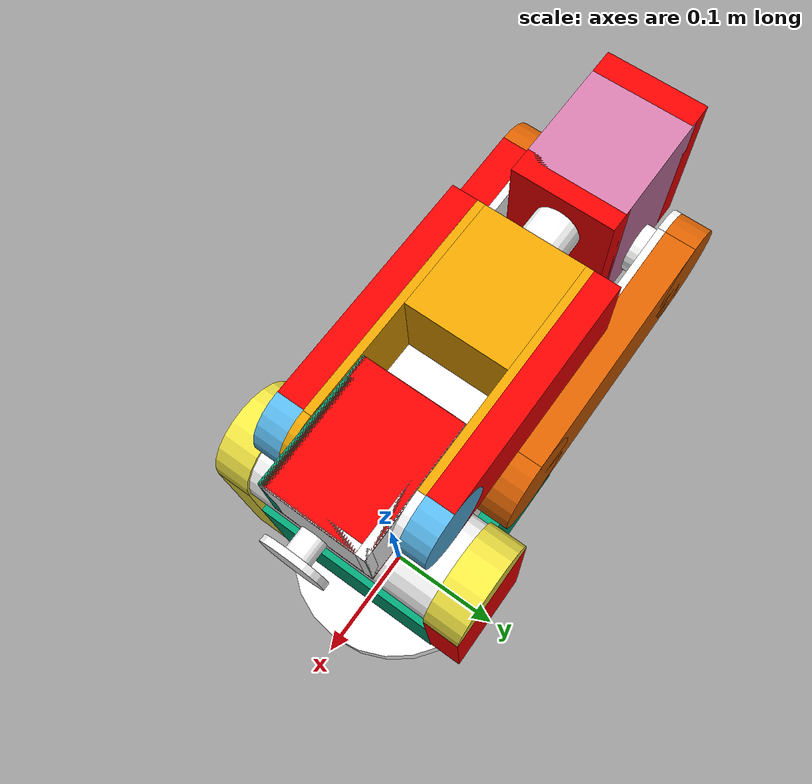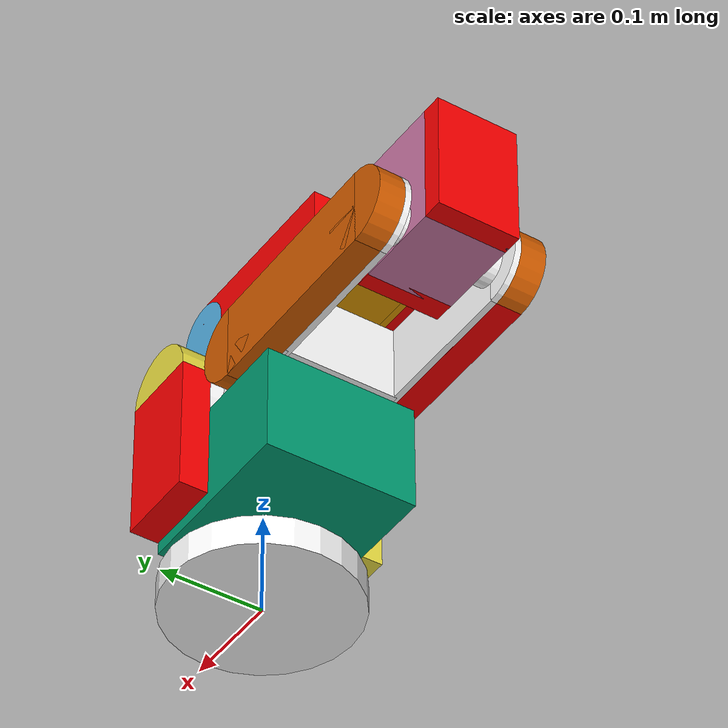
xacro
<?xml version="1.0"?>
<robot xmlns:xacro="http://www.ros.org/wiki/xacro" name="ruka_gz">

    <!-- Import ruka_hand urdf file -->

    <xacro:include filename="$(find ruka_gz)/config/ruka_gz.urdf" />

    <!-- Import control_xacro -->
    <xacro:include filename="$(find ruka_gz)/config/ruka_gz.ros2_control.xacro" />

</robot>

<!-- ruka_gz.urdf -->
<robot name="ruka_gz">

    <material name="white">
        <color rgba="1 1 1 1"/>
    </material>

    <material name="red">
        <color rgba="1 0 0 1"/>
    </material>

    <link name="world"/>
    <joint name="ruka_joint_world" type="fixed">
        <parent link="world"/>
        <child link="base_link"/>
        <origin rpy="0 0 0" xyz="0 0 0"/>
    </joint>

    <link name="base_link">

        <inertial>
            <mass value="2.92"/>
            <origin rpy="0 0 0" xyz="-0.025566 -2.88e-05 0.057332"/>
            <inertia ixx="0.00782229414331" ixy="-1.56191622996e-05" ixz="-0.00126005738123" iyy="0.0109027971813" iyz="1.08233858202e-05" izz="0.0102355503949"/>
        </inertial>

        <visual>
          <origin rpy="0 0 0" xyz="0 0 0.015" />
          <geometry>
            <cylinder radius="0.09" length="0.03" />
          </geometry>

        <material name="white"/>
        </visual>

        <collision>
            <origin rpy="0 0 0" xyz="0 0 0.015" />
          <geometry>
            <cylinder radius="0.09" length="0.03" />
          </geometry>
          </collision>

    </link>

    <joint name="base_link__link_01" type="revolute">
        <axis xyz="0 0 1"/>

        <safety_controller k_position="100.0" k_velocity="40.0" soft_lower_limit="-2.908" soft_upper_limit="2.908" />

        <limit effort="1000.0" lower="-2.96" upper="2.96" velocity="0.5"/>
        <origin rpy="0 0 0" xyz="0 0 0.03"/>
        <parent link="base_link"/>
        <child link="link_01"/>

    </joint>

    <link name="link_01">

        <inertial>
            <mass value="2.74"/>
            <origin rpy="0 0 0" xyz="0 -0.0324958 -0.0675818"/>
            <inertia ixx="0.0180416958283" ixy="0.0" ixz="0.0" iyy="0.0159136071891" iyz="0.0046758424612" izz="0.00620690827127"/>
        </inertial>

        <visual>
            <origin rpy="0 0 0" xyz="0 0 0.016" />
            <geometry>
                <cylinder radius="0.047" length="0.032" />
            </geometry>
            <material name="white"/>

        </visual>

        <collision>
            <origin rpy="0 0 0" xyz="0 0 0.016" />
            <geometry>
                <cylinder radius="0.047" length="0.032" />
            </geometry>
          </collision>

        <visual>
            <origin rpy="0 0 0" xyz="-0.0365 0 0.085" />
            <geometry>
                <box size ="0.173 0.148 0.106"/>
            </geometry>

        </visual>

        <collision>
           <origin rpy="0 0 0" xyz="-0.0365 0 0.085" />
            <geometry>
                <box size ="0.173 0.148 0.106"/>
            </geometry>
          </collision>

    </link>

    <joint name="link_01__link_01_red" type="fixed">
        <origin rpy="0 0 0" xyz="0.01 0 0"/>
        <parent link="link_01"/>
        <child link="link_01_red"/>
    </joint>

    <link name="link_01_red">
        <visual>
            <origin rpy="0 0 0" xyz="0 0.088 0.1115" />
            <geometry>
                <box size ="0.08 0.028 0.135"/>
            </geometry>
            <material name="red"/>

        </visual>

        <collision>
            <origin rpy="0 0 0" xyz="0 0.088 0.1115" />
            <geometry>
                <box size ="0.08 0.028 0.135"/>
            </geometry>
          </collision>

        <visual>
            <origin rpy="0 0 0" xyz="0 -0.088 0.1115" />
            <geometry>
                <box size ="0.08 0.028 0.135"/>
            </geometry>

        </visual>

        <collision>
            <origin rpy="0 0 0" xyz="0 -0.088 0.1115" />
            <geometry>
                <box size ="0.08 0.028 0.135"/>
            </geometry>
          </collision>

        <visual>
            <origin rpy="1.57 0 0" xyz="0 -0.088 0.179" />
            <geometry>
                <cylinder radius="0.04" length="0.028"/>
            </geometry>

        </visual>

        <collision>
           <origin rpy="1.57 0 0" xyz="0 -0.088 0.179" />
            <geometry>
                <cylinder radius="0.04" length="0.028"/>
            </geometry>
          </collision>

        <visual>
            <origin rpy="1.57 0 0" xyz="0 0.088 0.179" />
            <geometry>
                <cylinder radius="0.04" length="0.028"/>
            </geometry>

        </visual>

        <collision>
           <origin rpy="1.57 0 0" xyz="0 0.088 0.179" />
            <geometry>
                <cylinder radius="0.04" length="0.028"/>
            </geometry>
          </collision>
    </link>

    <joint name="link_01__link_02" type="revolute">
        <axis xyz="0 0 1"/>

        <limit effort="1000.0" lower="-3.57" upper="0.05" velocity="0.5"/>
        <origin rpy="1.57 -1.57 0" xyz="0.01 0 0.179"/>   <!-- origin rpy="1.57 0 0"-->
        <parent link="link_01"/>

        <child link="link_02"/>
    </joint>

    <link name="link_02">

       <inertial>
            <mass value="2.74"/>
            <origin rpy="0 0 0" xyz="0 -0.06861 0.0322285"/>
            <inertia ixx="0.0182856182281" ixy="0.0" ixz="0.0" iyy="0.00621358421175" iyz="-0.00472844221905" izz="0.0161514346309"/>
        </inertial>

        <visual>
            <origin rpy="0 0 0" xyz="0 0 0" />
            <geometry>
                <cylinder radius="0.038" length="0.148"/>
            </geometry>
            <material name="white"/>

        </visual>

        <collision>
             <origin rpy="0 0 0" xyz="0 0 0" />
            <geometry>
                <cylinder radius="0.038" length="0.148"/>
            </geometry>
          </collision>

        <visual>
            <origin rpy="0 0 0" xyz="0 0.06775 0" />
            <geometry>
                <box size ="0.076 0.1355 0.116"/>
            </geometry>
            <material name="white"/>

        </visual>

        <collision>
          <origin rpy="0 0 0" xyz="0 0.06775 0" />
            <geometry>
                <box size ="0.076 0.1355 0.116"/>
            </geometry>
          </collision>

        <visual>
            <origin rpy="0 1.57 0" xyz="0 0.14 0.055" />
            <geometry>
                <box size ="0.006 0.28 0.076"/>
            </geometry>
            <material name="white"/>

        </visual>

        <collision>
            <origin rpy="0 1.57 0" xyz="0 0.14 0.055" />
            <geometry>
                <box size ="0.006 0.28 0.076"/>
            </geometry>
          </collision>

        <visual>
            <origin rpy="0 1.57 0" xyz="0 0.14 -0.055" />
            <geometry>
                <box size ="0.006 0.28 0.076"/>
            </geometry>
            <material name="white"/>

        </visual>

        <collision>
            <origin rpy="0 1.57 0" xyz="0 0.14 -0.055" />
            <geometry>
                <box size ="0.006 0.28 0.076"/>
            </geometry>
          </collision>

        <visual>
            <origin rpy="0 0 0" xyz="0 0.28 -0.055" />
            <geometry>
                <cylinder radius="0.038" length="0.006"/>
            </geometry>
            <material name="white"/>

        </visual>

        <collision>
            <origin rpy="0 0 0" xyz="0 0.28 -0.055" />
            <geometry>
                <cylinder radius="0.038" length="0.006"/>
            </geometry>
          </collision>

        <visual>
            <origin rpy="0 0 0" xyz="0 0.28 0.055" />
            <geometry>
                <cylinder radius="0.038" length="0.006"/>
            </geometry>
            <material name="white"/>

        </visual>

        <collision>
            <origin rpy="0 0 0" xyz="0 0.28 0.055" />
            <geometry>
                <cylinder radius="0.038" length="0.006"/>
            </geometry>
          </collision>

    </link>

    <joint name="link_02__link_02_red" type="fixed">
        <origin rpy="0 0 0" xyz="0 0.181 0"/>
        <parent link="link_02"/>
        <child link="link_02_red"/>
    </joint>

    <link name="link_02_red">
        <visual>
            <origin rpy="0 0 0" xyz="0 0 0.0705" />
            <geometry>
                <box size ="0.076 0.198 0.025"/>
            </geometry>
            <material name="red"/>

        </visual>

        <collision>
            <origin rpy="0 0 0" xyz="0 0 0.0705" />
            <geometry>
                <box size ="0.076 0.198 0.025"/>
            </geometry>
          </collision>

        <visual>
            <origin rpy="0 0 0" xyz="0 0 -0.0705" />
            <geometry>
                <box size ="0.076 0.198 0.025"/>
            </geometry>

        </visual>

        <collision>
            <origin rpy="0 0 0" xyz="0 0 -0.0705" />
            <geometry>
                <box size ="0.076 0.198 0.025"/>
            </geometry>
          </collision>

        <visual>
            <origin rpy="0 0 0" xyz="0 -0.099 0.0705" />
            <geometry>
                <cylinder radius="0.038" length="0.025"/>
            </geometry>

        </visual>

        <collision>
            <origin rpy="0 0 0" xyz="0 -0.099 0.0705" />
            <geometry>
                <cylinder radius="0.038" length="0.025"/>
            </geometry>

          </collision>

        <visual>
            <origin rpy="0 0 0" xyz="0 0.099 0.0705" />
            <geometry>
                <cylinder radius="0.038" length="0.025"/>
            </geometry>

        </visual>

        <collision>
            <origin rpy="0 0 0" xyz="0 0.099 0.0705" />
            <geometry>
                <cylinder radius="0.038" length="0.025"/>
            </geometry>
          </collision>

        <visual>
            <origin rpy="0 0 0" xyz="0 -0.099 -0.0705" />
            <geometry>
                <cylinder radius="0.038" length="0.025"/>
            </geometry>

        </visual>

        <collision>
            <origin rpy="0 0 0" xyz="0 -0.099 -0.0705" />
            <geometry>
                <cylinder radius="0.038" length="0.025"/>
            </geometry>
          </collision>

        <visual>
            <origin rpy="0 0 0" xyz="0 0.099 -0.0705" />
            <geometry>
                <cylinder radius="0.038" length="0.025"/>
            </geometry>

        </visual>

        <collision>
             <origin rpy="0 0 0" xyz="0 0.099 -0.0705" />
            <geometry>
                <cylinder radius="0.038" length="0.025"/>
            </geometry>

          </collision>

    </link>

    <joint name="link_02__link_03" type="revolute">
        <axis xyz="0 0 1"/>

        <limit effort="1000.0" lower="-0.035" upper="5.23" velocity="0.5"/>
        <origin rpy="0 0 0.0175" xyz="0 0.28 0"/>
        <parent link="link_02"/>
        <child link="link_03"/>
    </joint>

    <link name="link_03">

         <inertial>
            <mass value="2.38"/>
            <origin rpy="0 0 0" xyz="0.0469893 0.0316374 -0.031704"/>
            <inertia ixx="0.00771376630908" ixy="-0.00248490625138" ixz="-0.00332147581033" iyy="0.00989108008727" iyz="-0.00217796151484" izz="0.00811723558464"/>
        </inertial>
        <visual>
            <origin rpy="0 0 0" xyz="0 0 0" />
            <geometry>
                <cylinder radius="0.019" length="0.104" />
            </geometry>
            <material name="white"/>
        </visual>

        <collision>
            <origin rpy="0 0 0" xyz="0 0 0" />
            <geometry>
                <cylinder radius="0.019" length="0.104" />
            </geometry>
          </collision>

        <visual>
            <origin rpy="0 0 0" xyz="0.04 0 0" />
            <geometry>
                <box size ="0.120 0.090 0.08"/>
            </geometry>

        </visual>

        <collision>
            <origin rpy="0 0 0" xyz="0.04 0 0" />
            <geometry>
                <box size ="0.120 0.090 0.08"/>
            </geometry>
          </collision>

    </link>

    <joint name="link_03__link_03_red" type="fixed">
        <origin rpy="0 0 0" xyz="0.04 0 0"/>
        <parent link="link_03"/>
        <child link="link_03_red"/>
    </joint>

    <link name="link_03_red">

       <visual>
            <origin rpy="0 0 0" xyz="0 0.05 0" />
            <geometry>
                <box size ="0.120 0.020 0.08"/>
            </geometry>
            <material name="red"/>

        </visual>

        <collision>
           <origin rpy="0 0 0" xyz="0 0.05 0" />
            <geometry>
                <box size ="0.120 0.020 0.08"/>
            </geometry>
          </collision>

        <visual>
            <origin rpy="0 0 0" xyz="0 -0.05 0" />
            <geometry>
                <box size ="0.120 0.020 0.08"/>
            </geometry>
            <material name="red"/>

        </visual>

        <collision>
            <origin rpy="0 0 0" xyz="0 -0.05 0" />
            <geometry>
                <box size ="0.120 0.020 0.08"/>
            </geometry>
          </collision>

    </link>

    <joint name="link_03__link_04" type="revolute">
        <axis xyz="0 0 1"/>

        <safety_controller k_position="100.0" k_velocity="40.0" soft_lower_limit="-2.818" soft_upper_limit="2.818" />

        <limit effort="1000.0" lower="-2.87" upper="2.87" velocity="0.5"/>
        <origin rpy="1.57 0 0" xyz="0.068 0 0"/>
        <parent link="link_03"/>
        <child link="link_04"/>
    </joint>

    <link name="link_04">

        <inertial>
            <mass value="2.38"/>
            <origin rpy="0 0 0" xyz="-0.0360446 0.0336853 0.031882"/>
            <inertia ixx="0.00799663881132" ixy="0.00347095570217" ixz="-0.00241222942995" iyy="0.00825390705278" iyz="0.00235774044121" izz="0.0102515004345"/>
        </inertial>
        <visual>
            <origin rpy="0 0 0" xyz="0 0 0.0455" />
            <geometry>
                <cylinder radius="0.018" length="0.091" />
            </geometry>

            <material name="white"/>

        </visual>

        <collision>
             <origin rpy="0 0 0" xyz="0 0 0.0455" />
            <geometry>
                <cylinder radius="0.018" length="0.091" />
            </geometry>

          </collision>

        <visual>
            <origin rpy="0 0 0" xyz="0 0 0.135" />
            <geometry>
                <box size ="0.06 0.078 0.088"/>
            </geometry>

        </visual>

        <collision>
            <origin rpy="0 0 0" xyz="0 0 0.135" />
            <geometry>
                <box size ="0.06 0.078 0.088"/>
            </geometry>
          </collision>

        <visual>
            <origin rpy="0 0 0" xyz="0 0.042 0.181" />
            <geometry>
                <box size ="0.06 0.006 0.18"/>
            </geometry>

        </visual>

        <collision>
            <origin rpy="0 0 0" xyz="0 0.042 0.181" />
            <geometry>
                <box size ="0.06 0.006 0.18"/>
            </geometry>
          </collision>

        <visual>
            <origin rpy="0 0 0" xyz="0 -0.042 0.181" />
            <geometry>
                <box size ="0.06 0.006 0.18"/>
            </geometry>

        </visual>

        <collision>
            <origin rpy="0 0 0" xyz="0 -0.042 0.181" />
            <geometry>
                <box size ="0.06 0.006 0.18"/>
            </geometry>
          </collision>

        <visual>
            <origin rpy="1.57 0 0" xyz="0 0.042 0.271" />
            <geometry>
                <cylinder radius="0.03" length="0.006" />
            </geometry>

        </visual>

        <collision>
            <origin rpy="1.57 0 0" xyz="0 0.042 0.271" />
            <geometry>
                <cylinder radius="0.03" length="0.006" />
            </geometry>
          </collision>

        <visual>
            <origin rpy="1.57 0 0" xyz="0 -0.042 0.271" />
            <geometry>
                <cylinder radius="0.03" length="0.006" />
            </geometry>

            <material name="white"/>

        </visual>

        <collision>
            <origin rpy="1.57 0 0" xyz="0 -0.042 0.271" />
            <geometry>
                <cylinder radius="0.03" length="0.006" />
            </geometry>
          </collision>

    </link>

    <joint name="link_04__link_04_red" type="fixed">
        <origin rpy="0 0 0" xyz="0 0 0.181"/>
        <parent link="link_04"/>
        <child link="link_04_red"/>
    </joint>

    <link name="link_04_red">

       <visual>
            <origin rpy="0 1.57 0" xyz="0 0.055 0" />
            <geometry>
                <box size ="0.18 0.020 0.06"/>
            </geometry>
            <material name="red"/>

        </visual>

        <collision>
            <origin rpy="0 1.57 0" xyz="0 0.055 0" />
            <geometry>
                <box size ="0.18 0.020 0.06"/>
            </geometry>
          </collision>

        <visual>
            <origin rpy="0 1.57 0" xyz="0 -0.055 0" />
            <geometry>
                <box size ="0.18 0.020 0.06"/>
            </geometry>
            <material name="red"/>

        </visual>

        <collision>
            <origin rpy="0 1.57 0" xyz="0 -0.055 0" />
            <geometry>
                <box size ="0.18 0.020 0.06"/>
            </geometry>
          </collision>

        <visual>
            <origin rpy="1.57 0 0" xyz="0 -0.055 0.09" />
            <geometry>
                <cylinder radius="0.03" length="0.02" />
            </geometry>

        </visual>

        <collision>
            <origin rpy="1.57 0 0" xyz="0 -0.055 0.09" />
            <geometry>
                <cylinder radius="0.03" length="0.02" />
            </geometry>
          </collision>

        <visual>
            <origin rpy="1.57 0 0" xyz="0 0.055 0.09" />
            <geometry>
                <cylinder radius="0.03" length="0.02" />
            </geometry>

        </visual>

        <collision>
            <origin rpy="1.57 0 0" xyz="0 0.055 0.09" />
            <geometry>
                <cylinder radius="0.03" length="0.02" />
            </geometry>
          </collision>

    </link>

    <joint name="link_04__link_05" type="revolute">
        <axis xyz="0 0 1"/>

        <safety_controller k_position="100.0" k_velocity="40.0" soft_lower_limit="-2.388" soft_upper_limit="2.388" />

        <limit effort="1000.0" lower="-2.44" upper="2.44" velocity="0.5"/>
        <origin rpy="-1.57 0 0" xyz="0 0 0.271"/>
        <parent link="link_04"/>
        <child link="link_05"/>
    </joint>

    <link name="link_05">

        <inertial>
            <mass value="2.74"/>
            <origin rpy="0 0 0" xyz="0 0.0610427 -0.104176"/>
            <inertia ixx="0.030371374513" ixy="6.50283587108e-07" ixz="-1.05129179916e-05" iyy="0.0288752887402" iyz="-0.00775653445787" izz="0.00444134056164"/>
        </inertial>
        <visual>
            <origin rpy="0 0 0" xyz="0 0 0" />
            <geometry>
                <cylinder radius="0.0175" length="0.078" />
            </geometry>

            <material name="white"/>
        </visual>

        <collision>
            <origin rpy="0 0 0" xyz="0 0 0" />
            <geometry>
                <cylinder radius="0.0175" length="0.078" />
            </geometry>
          </collision>

        <visual>
            <origin rpy="0 0 0" xyz="0 0 0.0355" />
            <geometry>
                <box size ="0.055 0.1 0.007"/>
            </geometry>

        </visual>

        <collision>
            <origin rpy="0 0 0" xyz="0 0 0.0355" />
            <geometry>
                <box size ="0.055 0.1 0.007"/>
            </geometry>
          </collision>

        <visual>
            <origin rpy="0 0 0" xyz="0 0 -0.0355" />
            <geometry>
                <box size ="0.055 0.1 0.007"/>
            </geometry>
            <material name="white"/>

        </visual>

        <collision>
            <origin rpy="0 0 0" xyz="0 0 -0.0355" />
            <geometry>
                <box size ="0.055 0.1 0.007"/>
            </geometry>
          </collision>

        <visual>
            <origin rpy="0 0 0" xyz="0 -0.0465 0" />
            <geometry>
                <box size ="0.055 0.007 0.078"/>
            </geometry>
            <material name="white"/>

        </visual>

        <collision>
            <origin rpy="0 0 0" xyz="0 -0.0465 0" />
            <geometry>
                <box size ="0.055 0.007 0.078"/>
            </geometry>
          </collision>

    </link>

    <joint name="link_05__link_05_red" type="fixed">
        <origin rpy="0 0 0" xyz="0 0.05 0"/>
        <parent link="link_05"/>
        <child link="link_05_red"/>
    </joint>

    <link name="link_05_red">

       <visual>
            <origin rpy="0 0 0" xyz="0 -0.00075 0" />
            <geometry>
                <box size ="0.055 0.0015 0.078"/>
            </geometry>
            <material name="red"/>

        </visual>

        <collision>
            <origin rpy="0 0 0" xyz="0 -0.00075 0" />
            <geometry>
                <box size ="0.055 0.0015 0.078"/>
            </geometry>
          </collision>

        <visual>
            <origin rpy="0 0 0" xyz="0.02675 -0.05 0" />
            <geometry>
                <box size ="0.0015 0.1 0.078"/>
            </geometry>
            <material name="red"/>

        </visual>

        <collision>
            <origin rpy="0 0 0" xyz="0.02675 -0.05 0" />
            <geometry>
                <box size ="0.0015 0.1 0.078"/>
            </geometry>
          </collision>

        <visual>
            <origin rpy="0 0 0" xyz="-0.02675 -0.05 0" />
            <geometry>
                <box size ="0.0015 0.1 0.078"/>
            </geometry>
            <material name="red"/>

        </visual>

        <collision>
            <origin rpy="0 0 0" xyz="-0.02675 -0.05 0" />
            <geometry>
                <box size ="0.0015 0.1 0.078"/>
            </geometry>
          </collision>

    </link>

    <joint name="link_05__link_06" type="revolute">
        <axis xyz="0 0 1"/>

        <safety_controller k_position="100.0" k_velocity="40.0" soft_lower_limit="-3.12" soft_upper_limit="3.12" />

        <limit effort="1000.0" lower="-3.14" upper="3.14" velocity="0.5"/>
        <origin rpy="1.57 0 0" xyz="0 -0.0766 0"/>
        <parent link="link_05"/>
        <child link="link_06"/>
    </joint>

    <link name="link_06">

        <inertial>
            <mass value="1.55"/>
            <origin rpy="0 0 0" xyz="0.0510509 0.009108 0.0106343"/>
            <inertia ixx="0.00303336450376" ixy="-0.000437276865508" ixz="0.000629257294877" iyy="0.00404479911567" iyz="0.000130472021025" izz="0.00558234286039"/>
        </inertial>
        <visual>
            <origin rpy="0 0 0" xyz="0 0 -0.0159" />
            <geometry>
                <cylinder radius="0.0095" length="0.0168" />
            </geometry>
            <material name="white"/>
        </visual>

        <collision>
            <origin rpy="0 0 0" xyz="0 0 -0.0159" />
            <geometry>
                <cylinder radius="0.0095" length="0.0168" />
            </geometry>

          </collision>

        <visual>
            <origin rpy="0 0 0" xyz="0 0 -0.005" />
            <geometry>
                <cylinder radius="0.024" length="0.005" />
            </geometry>
            <material name="white"/>

        </visual>

        <collision>
            <origin rpy="0 0 0" xyz="0 0 -0.005" />
            <geometry>
                <cylinder radius="0.024" length="0.005" />
            </geometry>

          </collision>
    </link>

</robot>
